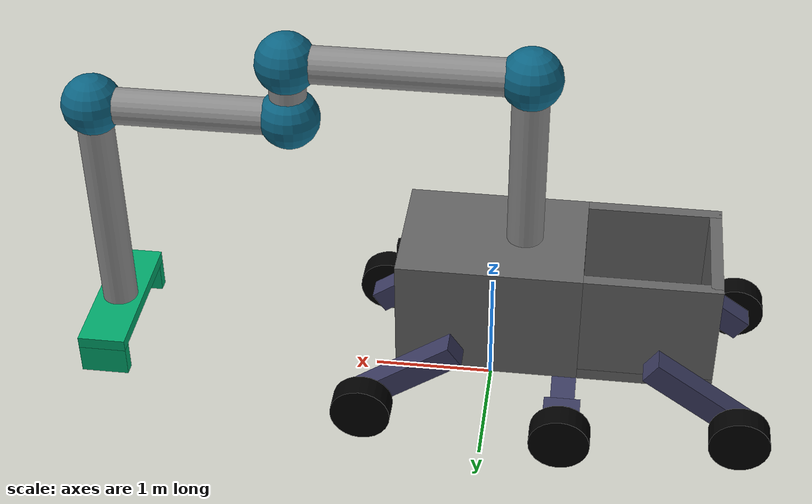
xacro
<?xml version="1.0"?>
<robot xmlns:xacro="http://www.ros.org/wiki/xacro" name="robot">

  <link name="base_footprint">
      <origin rpy="0 0.00000 0" xyz="0.00000 0.00000 0.00000"/>
  </link>

  <xacro:include filename="$(find rover_description)/urdf/wheels/rover_wheel.urdf.xacro"/>
  <xacro:include filename="$(find rover_description)/urdf/base/base.urdf.xacro"/>
  <xacro:include filename="$(find rover_description)/urdf/arm/arm.urdf.xacro"/>
  <xacro:include filename="$(find rover_description)/urdf/arm/gripper.urdf.xacro"/>
  <xacro:include filename="$(find rover_description)/urdf/sensors/imu.urdf.xacro"/>
  <xacro:include filename="$(find rover_description)/urdf/sensors/camera.urdf.xacro"/>

  <xacro:base parent="base_footprint"/>
  <xacro:arm parent="Base_link"/>
  <xacro:gripper parent="Brazo_L3_link"/>

  <!-- Wheels -->
  <xacro:wheel r="0.0000" p="1.57080" w="0.00000" x="0.15000" y="0.00000" z="0.00000" name="Rueda_cen_der_link" parent="Union_eje_cen_der_link"/>
  <xacro:wheel r="-3.1416" p="1.57080" w="0.00000" x="-0.15000" y="0.00000" z="0.00000" name="Rueda_cen_iz_link" parent="Union_eje_cen_iz_link"/>
  <xacro:wheel r="-1.57080" p="0.61087" w="-1.57080" x="0.20000" y="-0.00404" z="-0.43010" name="Rueda_del_der_link" parent="Eje_del_der_link"/>
  <xacro:wheel r="1.57080" p="0.61087" w="-1.57080" x="-0.20000" y="-0.00404" z="-0.43010" name="Rueda_del_iz_link" parent="Eje_del_iz_link"/>
  <xacro:wheel r="1.57080" p="0.61087" w="1.57080" x="0.20000" y="0.00404" z="-0.43010" name="Rueda_tras_der_link" parent="Eje_tras_der_link"/>
  <xacro:wheel r="-1.57080" p="0.61087" w="1.57080" x="-0.20000" y="0.00404" z="-0.43010" name="Rueda_tras_iz_link" parent="Eje_tra_iz_link"/>

  <!-- Sensors -->
  <xacro:IMU r="0" p="0" y="1.57080" parent="Base_link"/>
  <xacro:camera r="0" p="0" w="1.57080" x="0.00000" y="0.75000" z="0.30000" name="main_camera_link" parent="Base_link"/>
  <xacro:camera r="0" p="-1.57080" w="1.57080" x="0.00000" y="0.00000" z="0.050000" name="gripper_camera_link" parent="Base_pinza_link"/>

  <!-- Gazebo ROS Control plugins-->
  <xacro:include filename="$(find rover_description)/urdf/ros2_control.urdf.xacro"/>
  <xacro:arg name="config_controllers" default="$(find rover_description)/config/rover_controllers.yaml"/>
  <xacro:arg name="update_rate" default="20"/>
  <xacro:ros2_control/>
</robot>

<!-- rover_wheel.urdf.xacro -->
<robot name="robot" xmlns:xacro="http://wiki.ros.org/xacro">

  <xacro:macro name="wheel" params="r p w x y z name parent">
    <joint name="${name}_joint" type="continuous">
      <limit effort="100.00000" velocity="100.00000"/>
      <origin rpy="${r} ${p} ${w}" xyz="${x} ${y} ${z}"/>
      <parent link="${parent}"/>
      <child link="${name}"/>
      <axis xyz="0.00000 0.00000 1.00000"/>
    </joint>
    <link name="${name}">
      <collision name="${name}_collision">
        <origin rpy="0 0 0" xyz="0 0 0"/>
        <geometry>
          <cylinder radius="0.25" length="0.2"/>
        </geometry>
        <surface>
          <friction>
            <ode>
              <mu>1.000000</mu>
              <mu2>1.000000</mu2>
              <slip1>0.50000</slip1>
              <slip2>0.50000</slip2>
            </ode>
          </friction>
        </surface>
      </collision>
      <inertial>
        <origin rpy="0 0 0" xyz="0 0 0"/>
        <mass value="1.0"/>
        <inertia ixx="0.03125" ixy="0" ixz="0" iyy="0.01896" iyz="0" izz="0.01896"/>
      </inertial>
      <visual name="${name}_visual">
        <origin rpy="0 0 0" xyz="0 0 0"/>
        <material name="black"/>
        <geometry>
          <cylinder radius="0.25" length="0.2"/>
        </geometry>
      </visual>
    </link>

    <transmission name="${name}_transmission">
      <type>transmission_interface/SimpleTransmission</type>
      <joint name="${name}_joint">
        <hardwareInterface>hardware_interface/VelocityJointInterface</hardwareInterface>
      </joint>
      <actuator name="${name}_motor">
        <mechanicalReduction>1.0</mechanicalReduction>
      </actuator>
    </transmission>
    <gazebo reference="${name}">
      <mu1>5</mu1>
      <mu2>5</mu2>
    </gazebo>
  </xacro:macro>

  <material name="black">
    <color rgba="0.00000 0.00000 0.00000 1.00000"/>
  </material>

</robot>

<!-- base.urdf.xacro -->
<robot name="robot" xmlns:xacro="http://wiki.ros.org/xacro">

  <xacro:macro name="base" params="parent">
    <joint name="Eje_cen_der_link_joint" type="fixed">
        <origin rpy="0.00000 -0.95993 0.00000" xyz="0.50000 -0.65000 -0.60000"/>
        <parent link="Base_link"/>
        <child link="Eje_cen_der_link"/>
    </joint>
    <joint name="Eje_cen_iz_link_joint" type="fixed">
        <origin rpy="0.00000 0.95993 0.00000" xyz="-0.50000 -0.65000 -0.60000"/>
        <parent link="Base_link"/>
        <child link="Eje_cen_iz_link"/>
    </joint>
    <joint name="Eje_del_der_link_joint" type="fixed">
        <origin rpy="0.95993 0.00000 0.00000" xyz="0.65000 0.65000 -0.50000"/>
        <parent link="Base_link"/>
        <child link="Eje_del_der_link"/>
    </joint>
    <joint name="Eje_del_iz_link_joint" type="fixed">
        <origin rpy="0.95993 0.00000 0.00000" xyz="-0.65000 0.65000 -0.50000"/>
        <parent link="Base_link"/>
        <child link="Eje_del_iz_link"/>
    </joint>
    <joint name="Eje_tra_iz_link_joint" type="fixed">
        <origin rpy="-0.95993 0.00000 0.00000" xyz="-0.15000 -0.45000 -0.55000"/>
        <parent link="Pared_iz_link"/>
        <child link="Eje_tra_iz_link"/>
    </joint>
    <joint name="Eje_tras_der_link_joint" type="fixed">
        <origin rpy="-0.95993 0.00000 0.00000" xyz="0.15000 -0.45000 -0.55000"/>
        <parent link="Pared_der_link"/>
        <child link="Eje_tras_der_link"/>
    </joint>
    <joint name="Pared_der_link_joint" type="fixed">
        <origin rpy="0.00000 0.00000 0.00000" xyz="0.50000 -1.30000 0.05000"/>
        <parent link="Base_link"/>
        <child link="Pared_der_link"/>
    </joint>
    <joint name="Pared_inf_link_joint" type="fixed">
        <origin rpy="0.00000 0.00000 0.00000" xyz="0.00000 -1.30000 -0.45000"/>
        <parent link="Base_link"/>
        <child link="Pared_inf_link"/>
    </joint>
    <joint name="Pared_iz_link_joint" type="fixed">
        <origin rpy="0.00000 0.00000 0.00000" xyz="-0.50000 -1.30000 0.05000"/>
        <parent link="Base_link"/>
        <child link="Pared_iz_link"/>
    </joint>
    <joint name="Pared_tras_link_joint" type="fixed">
        <origin rpy="0.00000 0.00000 0.00000" xyz="0.00000 -0.50000 0.50000"/>
        <parent link="Pared_inf_link"/>
        <child link="Pared_tras_link"/>
    </joint>
    <joint name="Base_link_joint" type="fixed">
        <origin rpy="0.00000 0.00000 -1.5708" xyz="0.00000 0 1"/>
        <parent link="${parent}"/>
        <child link="Base_link"/>
    </joint>
    <joint name="Union_eje_cen_der_link_joint" type="fixed">
      <origin rpy="0.00000 0.95993 0.00000" xyz="0.07788 -0.00000 -0.37274"/>
      <parent link="Eje_cen_der_link"/>
      <child link="Union_eje_cen_der_link"/>
    </joint>
    <joint name="Union_eje_cen_iz_link_joint" type="fixed">
      <origin rpy="0.00000 -0.95993 0.00000" xyz="-0.07788 -0.00000 -0.37274"/>
      <parent link="Eje_cen_iz_link"/>
      <child link="Union_eje_cen_iz_link"/>
    </joint>
    <link name="Base_link">
      <collision name="Base_collision">
        <origin rpy="0.00000 0.00000 0.00000" xyz="0.00000 0.00000 0.00000"/>
        <geometry>
          <box size="1.10000 1.50000 1.00000"/>
        </geometry>
      </collision>
      <inertial>
        <inertia ixx="27.08333" ixy="0.00000" ixz="0.00000" iyy="18.41667" iyz="0.00000" izz="28.83333"/>
        <origin rpy="0.00000 0.00000 0.00000" xyz="0.00000 0.00000 0.00000"/>
        <mass value="100.00000"/>
      </inertial>
      <visual name="Base">
        <origin rpy="0.00000 0.00000 0.00000" xyz="0.00000 0.00000 0.00000"/>
        <material name="material"/>
        <geometry>
          <box size="1.10000 1.50000 1.00000"/>
        </geometry>
      </visual>
    </link>
    <link name="Eje_cen_der_link">
      <collision name="Eje_cen_der_collision">
        <origin rpy="0.00000 -0.00000 0.00000" xyz="-0.00000 -0.00000 -0.00000"/>
        <geometry>
          <box size="0.20000 0.20000 0.70000"/>
        </geometry>
      </collision>
      <inertial>
        <inertia ixx="0.01900" ixy="0.00000" ixz="0.01762" iyy="0.04417" iyz="0.00000" izz="0.03183"/>
        <origin rpy="0.00000 0.00000 0.00000" xyz="-0.00000 -0.00000 -0.00000"/>
        <mass value="1.00000"/>
      </inertial>
      <visual name="Eje_cen_der">
        <origin rpy="0.00000 0.00000 0.00000" xyz="0.00000 -0.00000 0.00000"/>
        <material name="dark_blue"/>
        <geometry>
          <box size="0.20000 0.20000 0.70000"/>
        </geometry>
      </visual>
    </link>
    <link name="Eje_cen_iz_link">
      <collision name="Eje_cen_iz_collision">
        <origin rpy="0.00000 0.00000 0.00000" xyz="0.00000 -0.00000 -0.00000"/>
        <geometry>
          <box size="0.20000 0.20000 0.70000"/>
        </geometry>
      </collision>
      <inertial>
        <inertia ixx="0.01900" ixy="0.00000" ixz="-0.01762" iyy="0.04417" iyz="0.00000" izz="0.03183"/>
        <origin rpy="0.00000 0.00000 0.00000" xyz="0.00000 -0.00000 -0.00000"/>
        <mass value="1.00000"/>
      </inertial>
      <visual name="Eje_cen_iz">
        <origin rpy="0.00000 0.00000 0.00000" xyz="0.00000 -0.00000 0.00000"/>
        <material name="dark_blue"/>
        <geometry>
          <box size="0.20000 0.20000 0.70000"/>
        </geometry>
      </visual>
    </link>
    <link name="Eje_del_der_link">
      <collision name="Eje_del_der_collision">
        <origin rpy="0.00000 0.00000 0.00000" xyz="0.00000 -0.00000 0.00000"/>
        <geometry>
          <box size="0.20000 0.20000 1.00000"/>
        </geometry>
      </collision>
      <inertial>
        <inertia ixx="0.08667" ixy="0.00000" ixz="0.00000" iyy="0.03299" iyz="0.03759" izz="0.06035"/>
        <origin rpy="0.00000 0.00000 0.00000" xyz="0.00000 -0.00000 0.00000"/>
        <mass value="1.00000"/>
      </inertial>
      <visual name="Eje_del_der">
        <origin rpy="0.00000 0.00000 0.00000" xyz="0.00000 -0.00000 0.00000"/>
        <material name="dark_blue"/>
        <geometry>
          <box size="0.20000 0.20000 1.00000"/>
        </geometry>
      </visual>
    </link>
    <link name="Eje_del_iz_link">
      <collision name="Eje_del_iz_collision">
        <origin rpy="0.00000 0.00000 0.00000" xyz="0.00000 -0.00000 0.00000"/>
        <geometry>
          <box size="0.20000 0.20000 1.00000"/>
        </geometry>
      </collision>
      <inertial>
        <inertia ixx="0.08667" ixy="0.00000" ixz="0.00000" iyy="0.03299" iyz="0.03759" izz="0.06035"/>
        <origin rpy="0.00000 0.00000 0.00000" xyz="0.00000 -0.00000 0.00000"/>
        <mass value="1.00000"/>
      </inertial>
      <visual name="Eje_del_iz">
        <origin rpy="0.00000 0.00000 0.00000" xyz="0.00000 -0.00000 0.00000"/>
        <material name="dark_blue"/>
        <geometry>
          <box size="0.20000 0.20000 1.00000"/>
        </geometry>
      </visual>
    </link>
    <link name="Eje_tra_iz_link">
      <collision name="Eje_tra_iz_collision">
        <origin rpy="-0.00000 0.00000 0.00000" xyz="0.00000 0.00000 -0.00000"/>
        <geometry>
          <box size="0.20000 0.20000 1.00000"/>
        </geometry>
      </collision>
      <inertial>
        <inertia ixx="0.08667" ixy="0.00000" ixz="0.00000" iyy="0.03299" iyz="-0.03759" izz="0.06035"/>
        <origin rpy="0.00000 0.00000 0.00000" xyz="0.00000 0.00000 -0.00000"/>
        <mass value="1.00000"/>
      </inertial>
      <visual name="Eje_tra_iz">
        <origin rpy="-0.00000 0.00000 0.00000" xyz="0.00000 0.00000 -0.00000"/>
        <material name="dark_blue"/>
        <geometry>
          <box size="0.20000 0.20000 1.00000"/>
        </geometry>
      </visual>
    </link>
    <link name="Eje_tras_der_link">
      <collision name="Eje_tras_der_collision">
        <origin rpy="-0.00000 0.00000 0.00000" xyz="0.00000 0.00000 -0.00000"/>
        <geometry>
          <box size="0.20000 0.20000 1.00000"/>
        </geometry>
      </collision>
      <inertial>
        <inertia ixx="0.08667" ixy="0.00000" ixz="0.00000" iyy="0.03299" iyz="-0.03759" izz="0.06035"/>
        <origin rpy="0.00000 0.00000 0.00000" xyz="0.00000 0.00000 -0.00000"/>
        <mass value="1.00000"/>
      </inertial>
      <visual name="Eje_tras_der">
        <origin rpy="-0.00000 0.00000 0.00000" xyz="0.00000 0.00000 -0.00000"/>
        <material name="dark_blue"/>
        <geometry>
          <box size="0.20000 0.20000 1.00000"/>
        </geometry>
      </visual>
    </link>
    <link name="Pared_der_link">
      <collision name="Pared_der_collision">
        <origin rpy="0.00000 0.00000 0.00000" xyz="0.00000 0.00000 0.00000"/>
        <geometry>
          <box size="0.10000 1.10000 0.90000"/>
        </geometry>
      </collision>
      <inertial>
        <inertia ixx="1.68333" ixy="0.00000" ixz="0.00000" iyy="0.68333" iyz="0.00000" izz="1.01667"/>
        <origin rpy="0.00000 0.00000 0.00000" xyz="0.00000 0.00000 0.00000"/>
        <mass value="10.00000"/>
      </inertial>
      <visual name="Pared_der">
        <origin rpy="0.00000 0.00000 0.00000" xyz="0.00000 0.00000 0.00000"/>
        <material name="material"/>
        <geometry>
          <box size="0.10000 1.10000 0.90000"/>
        </geometry>
      </visual>
    </link>
    <link name="Pared_inf_link">
      <collision name="Pared_inf_collision">
        <origin rpy="0.00000 0.00000 0.00000" xyz="0.00000 0.00000 0.00000"/>
        <geometry>
          <box size="1.10000 1.10000 0.10000"/>
        </geometry>
      </collision>
      <inertial>
        <inertia ixx="1.01667" ixy="0.00000" ixz="0.00000" iyy="1.01667" iyz="0.00000" izz="2.01667"/>
        <origin rpy="0.00000 0.00000 0.00000" xyz="0.00000 0.00000 0.00000"/>
        <mass value="10.00000"/>
      </inertial>
      <visual name="Pared_inf">
        <origin rpy="0.00000 0.00000 0.00000" xyz="0.00000 0.00000 0.00000"/>
        <material name="material"/>
        <geometry>
          <box size="1.10000 1.10000 0.10000"/>
        </geometry>
      </visual>
    </link>
    <link name="Pared_iz_link">
      <collision name="Pared_iz_collision">
        <origin rpy="0.00000 0.00000 0.00000" xyz="0.00000 0.00000 0.00000"/>
        <geometry>
          <box size="0.10000 1.10000 0.90000"/>
        </geometry>
      </collision>
      <visual name="Pared_iz">
        <origin rpy="0.00000 0.00000 0.00000" xyz="0.00000 0.00000 0.00000"/>
        <material name="material"/>
        <geometry>
          <box size="0.10000 1.10000 0.90000"/>
        </geometry>
      </visual>
    </link>
    <link name="Pared_tras_link">
      <collision name="Pared_tras_collision">
        <origin rpy="0.00000 0.00000 0.00000" xyz="0.00000 0.00000 0.00000"/>
        <geometry>
          <box size="1.00000 0.10000 0.90000"/>
        </geometry>
      </collision>
      <inertial>
        <inertia ixx="0.68333" ixy="0.00000" ixz="0.00000" iyy="1.50833" iyz="0.00000" izz="0.84167"/>
        <origin rpy="0.00000 0.00000 0.00000" xyz="0.00000 0.00000 0.00000"/>
        <mass value="10.00000"/>
      </inertial>
      <visual name="Pared_tras">
        <origin rpy="0.00000 0.00000 0.00000" xyz="0.00000 0.00000 0.00000"/>
        <material name="material"/>
        <geometry>
          <box size="1.00000 0.10000 0.90000"/>
        </geometry>
      </visual>
    </link>
    <link name="Union_eje_cen_der_link">
      <collision name="Union_eje_cen_der_collision">
        <origin rpy="0.00000 0.00000 0.00000" xyz="0.00000 0.00000 0.00000"/>
        <geometry>
          <box size="0.30000 0.30000 0.30000"/>
        </geometry>
      </collision>
      <inertial>
        <inertia ixx="0.01500" ixy="0.00000" ixz="0.00000" iyy="0.01500" iyz="0.00000" izz="0.01500"/>
        <origin rpy="0.00000 0.00000 0.00000" xyz="0.00000 0.00000 0.00000"/>
        <mass value="1.00000"/>
      </inertial>
      <visual name="Union_eje_cen_der">
        <origin rpy="0.00000 0.00000 0.00000" xyz="0.00000 0.00000 0.00000"/>
        <material name="dark_blue"/>
        <geometry>
          <box size="0.30000 0.30000 0.30000"/>
        </geometry>
      </visual>
    </link>
    <link name="Union_eje_cen_iz_link">
      <collision name="Union_eje_cen_iz_collision">
        <origin rpy="0.00000 0.00000 0.00000" xyz="0.00000 0.00000 0.00000"/>
        <geometry>
          <box size="0.30000 0.30000 0.30000"/>
        </geometry>
      </collision>
      <inertial>
        <inertia ixx="0.01500" ixy="0.00000" ixz="0.00000" iyy="0.01500" iyz="0.00000" izz="0.01500"/>
        <origin rpy="0.00000 0.00000 0.00000" xyz="0.00000 0.00000 0.00000"/>
        <mass value="1.00000"/>
      </inertial>
      <visual name="Union_eje_cen_iz">
        <origin rpy="0.00000 0.00000 0.00000" xyz="0.00000 0.00000 0.00000"/>
        <material name="dark_blue"/>
        <geometry>
          <box size="0.30000 0.30000 0.30000"/>
        </geometry>
      </visual>
    </link>

    <material name="material">
      <color rgba="0.39216 0.39216 0.39216 1.00000"/>
    </material>
    <material name="dark_blue">
      <color rgba="0.22745 0.23137 0.37647 1.00000"/>
    </material>
  </xacro:macro>

</robot>

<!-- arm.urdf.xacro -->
<robot name="robot" xmlns:xacro="http://wiki.ros.org/xacro">

  <xacro:macro name="arm" params="parent">
    <joint name="Brazo_L1_link_joint" type="fixed">
      <origin rpy="1.57080 0.00000 -1.57080" xyz="1.00000 0.00000 0.00000"/>
      <parent link="Union_base_L1_link"/>
      <child link="Brazo_L1_link"/>
    </joint>
    <joint name="Brazo_L2_link_joint" type="fixed">
      <origin rpy="1.57080 0.00000 -1.57080" xyz="0.85000 0.00000 0.00000"/>
      <parent link="Union_eje_L2_link"/>
      <child link="Brazo_L2_link"/>
    </joint>
    <joint name="Brazo_L3_link_joint" type="prismatic">
      <limit lower="0.00000" upper="1.70000" effort="50.0" velocity="1.5"/>
      <origin rpy="0.00000 0.00000 1.57080" xyz="0.00000 0.00000 -1.00000"/>
      <parent link="Union_L2_L3_link"/>
      <child link="Brazo_L3_link"/>
      <axis xyz="0.00000 0.00000 1.00000"/>
    </joint>
    <joint name="Brazo_base_link_joint" type="fixed">
      <origin rpy="0.00000 0.00000 0.00000" xyz="0.00000 -0.25000 1.00000"/>
      <parent link="${parent}"/>
      <child link="Brazo_base_link"/>
    </joint>
    <joint name="Union_L1_L2_link_joint" type="fixed">
      <origin rpy="0.00000 0.00000 0.00000" xyz="0.00000 0.00000 -0.25000"/>
      <parent link="Union_L1_eje_link"/>
      <child link="Union_L1_L2_link"/>
    </joint>
    <joint name="Union_L1_eje_link_joint" type="fixed">
      <origin rpy="-1.57080 0.00000 0.00000" xyz="0.00000 -0.00000 -0.90000"/>
      <parent link="Brazo_L1_link"/>
      <child link="Union_L1_eje_link"/>
    </joint>
    <joint name="Union_L2_L3_link_joint" type="fixed">
      <origin rpy="-1.57080 0.00000 0.00000" xyz="0.00000 -0.00000 -0.75000"/>
      <parent link="Brazo_L2_link"/>
      <child link="Union_L2_L3_link"/>
    </joint>
    <joint name="Union_base_L1_link_joint" type="revolute">
      <limit lower="-2.50000" upper="2.50000" effort="50.0" velocity="1.5"/>
      <origin rpy="0.00000 0.00000 1.57080" xyz="0.00000 0.00000 1.00000"/>
      <parent link="Brazo_base_link"/>
      <child link="Union_base_L1_link"/>
      <axis xyz="0.00000 0.00000 1.00000"/>
    </joint>
    <joint name="Union_eje_L2_link_joint" type="revolute">
      <limit lower="-2.50000" upper="2.50000" effort="50.0" velocity="1.5"/>
      <origin rpy="0.00000 0.00000 1.57080" xyz="0.00000 0.00000 -0.25000"/>
      <parent link="Union_L1_L2_link"/>
      <child link="Union_eje_L2_link"/>
      <axis xyz="0.00000 0.00000 1.00000"/>
    </joint>
    <link name="Brazo_L1_link">
      <collision name="Brazo_L1_collision">
        <origin rpy="-0.00000 0.00000 0.00000" xyz="0.00000 0.00000 0.00000"/>
        <geometry>
          <cylinder radius="0.15000" length="1.70000"/>
        </geometry>
      </collision>
      <inertial>
        <inertia ixx="0.49292" ixy="0.00000" ixz="0.00000" iyy="0.02250" iyz="-0.00000" izz="0.49292"/>
        <origin rpy="0.00000 0.00000 0.00000" xyz="0.00000 -0.00000 0.00000"/>
        <mass value="2.00000"/>
      </inertial>
      <visual name="Brazo_L1">
        <origin rpy="0.00000 0.00000 0.00000" xyz="0.00000 0.00000 0.00000"/>
        <material name="ligth_blue"/>
        <geometry>
          <cylinder radius="0.15000" length="1.70000"/>
        </geometry>
      </visual>
    </link>
    <link name="Brazo_L2_link">
      <collision name="Brazo_L2_collision">
        <origin rpy="0.00000 0.00000 0.00000" xyz="0.00000 0.00000 0.00000"/>
        <geometry>
          <cylinder radius="0.15000" length="1.50000"/>
        </geometry>
      </collision>
      <inertial>
        <inertia ixx="0.38625" ixy="0.00000" ixz="0.00000" iyy="0.02250" iyz="-0.00000" izz="0.38625"/>
        <origin rpy="0.00000 0.00000 0.00000" xyz="0.00000 0.00000 0.00000"/>
        <mass value="2.00000"/>
      </inertial>
      <visual name="Brazo_L2">
        <origin rpy="0.00000 0.00000 0.00000" xyz="0.00000 0.00000 0.00000"/>
        <material name="ligth_blue"/>
        <geometry>
          <cylinder radius="0.15000" length="1.50000"/>
        </geometry>
      </visual>
    </link>
    <link name="Brazo_L3_link">
      <collision name="Brazo_L3_collision">
        <origin rpy="0.00000 0.00000 0.00000" xyz="0.00000 0.00000 0.00000"/>
        <geometry>
          <cylinder radius="0.15000" length="2.00000"/>
        </geometry>
      </collision>
      <inertial>
        <inertia ixx="0.67792" ixy="0.00000" ixz="0.00000" iyy="0.67792" iyz="0.00000" izz="0.02250"/>
        <origin rpy="0.00000 0.00000 0.00000" xyz="0.00000 0.00000 0.00000"/>
        <mass value="2.00000"/>
      </inertial>
      <visual name="Brazo_L3">
        <origin rpy="0.00000 0.00000 0.00000" xyz="0.00000 0.00000 0.00000"/>
        <material name="ligth_blue"/>
        <geometry>
          <cylinder radius="0.15000" length="2.00000"/>
        </geometry>
      </visual>
    </link>
    <link name="Brazo_base_link">
      <collision name="Brazo_base_collision">
        <origin rpy="0.00000 0.00000 0.00000" xyz="0.00000 0.00000 0.00000"/>
        <geometry>
          <cylinder radius="0.15000" length="2.30000"/>
        </geometry>
      </collision>
      <inertial>
        <inertia ixx="4.46458" ixy="0.00000" ixz="0.00000" iyy="4.46458" iyz="0.00000" izz="0.11250"/>
        <origin rpy="0.00000 0.00000 0.00000" xyz="0.00000 0.00000 0.00000"/>
        <mass value="10.00000"/>
      </inertial>
      <visual name="Brazo_base">
        <origin rpy="0.00000 0.00000 0.00000" xyz="0.00000 0.00000 0.00000"/>
        <material name="ligth_blue"/>
        <geometry>
          <cylinder radius="0.15000" length="2.30000"/>
        </geometry>
      </visual>
    </link>
    <link name="Union_L1_L2_link">
      <collision name="Union_L1_L2_collision">
        <origin rpy="0.00000 0.00000 0.00000" xyz="0.00000 0.00000 0.00000"/>
        <geometry>
          <cylinder radius="0.15000" length="0.75000"/>
        </geometry>
      </collision>
      <inertial>
        <inertia ixx="0.05250" ixy="0.00000" ixz="0.00000" iyy="0.05250" iyz="0.00000" izz="0.01125"/>
        <origin rpy="0.00000 0.00000 0.00000" xyz="0.00000 0.00000 0.00000"/>
        <mass value="1.00000"/>
      </inertial>
      <visual name="Union_L1_L2">
        <origin rpy="0.00000 0.00000 0.00000" xyz="0.00000 0.00000 0.00000"/>
        <material name="ligth_blue"/>
        <geometry>
          <cylinder radius="0.15000" length="0.75000"/>
        </geometry>
      </visual>
    </link>
    <link name="Union_L1_eje_link">
      <collision name="Union_L1_eje_collision">
        <origin rpy="0.00000 0.00000 0.00000" xyz="0.00000 0.00000 0.00000"/>
        <geometry>
          <sphere radius="0.25000"/>
        </geometry>
      </collision>
      <inertial>
        <inertia ixx="0.02500" ixy="0.00000" ixz="0.00000" iyy="0.02500" iyz="0.00000" izz="0.02500"/>
        <origin rpy="0.00000 0.00000 0.00000" xyz="0.00000 0.00000 0.00000"/>
        <mass value="1.00000"/>
      </inertial>
      <visual name="Union_L1_eje">
        <origin rpy="0.00000 0.00000 0.00000" xyz="0.00000 0.00000 0.00000"/>
        <material name="ligth_grey"/>
        <geometry>
          <sphere radius="0.25000"/>
        </geometry>
      </visual>
    </link>
    <link name="Union_L2_L3_link">
      <collision name="Union_L2_L3_collision">
        <origin rpy="0.00000 0.00000 0.00000" xyz="0.00000 0.00000 0.00000"/>
        <geometry>
          <sphere radius="0.25000"/>
        </geometry>
      </collision>
      <inertial>
        <inertia ixx="0.02500" ixy="0.00000" ixz="0.00000" iyy="0.02500" iyz="0.00000" izz="0.02500"/>
        <origin rpy="0.00000 0.00000 0.00000" xyz="0.00000 0.00000 0.00000"/>
        <mass value="1.00000"/>
      </inertial>
      <visual name="Union_L2_L3">
        <origin rpy="0.00000 0.00000 0.00000" xyz="0.00000 0.00000 0.00000"/>
        <material name="ligth_grey"/>
        <geometry>
          <sphere radius="0.25000"/>
        </geometry>
      </visual>
    </link>
    <link name="Union_base_L1_link">
      <collision name="Union_base_L1_collision">
        <origin rpy="0.00000 0.00000 0.00000" xyz="0.00000 0.00000 0.00000"/>
        <geometry>
          <sphere radius="0.25000"/>
        </geometry>
      </collision>
      <inertial>
        <inertia ixx="0.02500" ixy="0.00000" ixz="0.00000" iyy="0.02500" iyz="0.00000" izz="0.02500"/>
        <origin rpy="0.00000 0.00000 0.00000" xyz="0.00000 0.00000 0.00000"/>
        <mass value="1.00000"/>
      </inertial>
      <visual name="Union_base_L1">
        <origin rpy="0.00000 0.00000 0.00000" xyz="0.00000 0.00000 0.00000"/>
        <material name="ligth_grey"/>
        <geometry>
          <sphere radius="0.25000"/>
        </geometry>
      </visual>
    </link>
    <link name="Union_eje_L2_link">
      <collision name="Union_eje_L2_collision">
        <origin rpy="0.00000 0.00000 0.00000" xyz="0.00000 0.00000 0.00000"/>
        <geometry>
          <sphere radius="0.25000"/>
        </geometry>
      </collision>
      <inertial>
        <inertia ixx="0.02500" ixy="0.00000" ixz="0.00000" iyy="0.02500" iyz="0.00000" izz="0.02500"/>
        <origin rpy="0.00000 0.00000 0.00000" xyz="0.00000 0.00000 0.00000"/>
        <mass value="1.00000"/>
      </inertial>
      <visual name="Union_eje_L2">
        <origin rpy="0.00000 0.00000 0.00000" xyz="0.00000 0.00000 0.00000"/>
        <material name="ligth_grey"/>
        <geometry>
          <sphere radius="0.25000"/>
        </geometry>
      </visual>
    </link>
  </xacro:macro>

  <material name="ligth_blue">
    <color rgba="0.55686 0.55686 0.55686 1.00000"/>
  </material>
  <material name="ligth_grey">
    <color rgba="0.04706 0.39608 0.51765 1.00000"/>
  </material>
</robot>

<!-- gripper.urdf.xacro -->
<robot name="robot" xmlns:xacro="http://wiki.ros.org/xacro">

  <xacro:macro name="gripper" params="parent">
    <joint name="Base_pinza_link_joint" type="continuous">
      <limit effort="50.0" velocity="1.5"/>
      <origin rpy="3.1416 0.00000 -1.57080" xyz="0.00000 0.00000 -1.00000"/>
      <parent link="${parent}"/>
      <child link="Base_pinza_link"/>
      <axis xyz="0.00000 0.00000 1.00000"/>
    </joint>
    <joint name="Dedo_der_link_joint" type="prismatic">
      <limit lower="0.00000" upper="0.45000" effort="50.0" velocity="1.5"/>
      <origin rpy="0.00000 0.00000 3.1416" xyz="0.57500 0.00000 0.17500"/>
      <parent link="Base_pinza_link"/>
      <child link="Dedo_der_link"/>
      <axis xyz="1.00000 0.00000 0.00000"/>
    </joint>
    <joint name="Dedo_iz_link_joint" type="prismatic">
      <limit lower="0.00000" upper="0.45000" effort="50.0" velocity="1.5"/>
      <origin rpy="0.00000 0.00000 0.00000" xyz="-0.57500 0.00000 0.17500"/>
      <parent link="Base_pinza_link"/>
      <child link="Dedo_iz_link"/>
      <axis xyz="1.00000 0.00000 0.00000"/>
    </joint>
    <link name="Base_pinza_link">
      <collision name="Base_pinza_collision">
        <origin rpy="0.00000 0.00000 0.00000" xyz="0.00000 0.00000 0.00000"/>
        <geometry>
          <box size="1.25000 0.40000 0.10000"/>
        </geometry>
      </collision>
      <inertial>
        <inertia ixx="0.01417" ixy="0.00000" ixz="0.00000" iyy="0.04771" iyz="0.00000" izz="0.06021"/>
        <origin rpy="0.00000 0.00000 0.00000" xyz="0.00000 0.00000 0.00000"/>
        <mass value="1.00000"/>
      </inertial>
      <visual name="Base_pinza">
        <origin rpy="0.00000 0.00000 0.00000" xyz="0.00000 0.00000 0.00000"/>
        <material name="ligth_green"/>
        <geometry>
          <box size="1.25000 0.40000 0.10000"/>
        </geometry>
      </visual>
    </link>
    <link name="Dedo_der_link">
      <collision name="Dedo_der_collision">
        <origin rpy="0.00000 0.00000 0.00000" xyz="0.00000 0.00000 -0.00000"/>
        <geometry>
          <box size="0.10000 0.40000 0.25000"/>
        </geometry>
      </collision>
      <inertial>
        <inertia ixx="0.00927" ixy="0.00000" ixz="0.00000" iyy="0.00302" iyz="0.00000" izz="0.00708"/>
        <origin rpy="0.00000 0.00000 0.00000" xyz="0.00000 0.00000 0.00000"/>
        <mass value="0.50000"/>
      </inertial>
      <visual name="Dedo_der">
        <origin rpy="0.00000 0.00000 0.00000" xyz="0.00000 0.00000 0.00000"/>
        <material name="ligth_green"/>
        <geometry>
          <box size="0.10000 0.40000 0.25000"/>
        </geometry>
      </visual>
    </link>
    <link name="Dedo_iz_link">
      <collision name="Dedo_iz_collision">
        <origin rpy="0.00000 0.00000 0.00000" xyz="0.00000 0.00000 0.00000"/>
        <geometry>
          <box size="0.10000 0.40000 0.25000"/>
        </geometry>
      </collision>
      <inertial>
        <inertia ixx="0.00927" ixy="0.00000" ixz="0.00000" iyy="0.00302" iyz="0.00000" izz="0.00708"/>
        <origin rpy="0.00000 0.00000 0.00000" xyz="0.00000 0.00000 0.00000"/>
        <mass value="0.50000"/>
      </inertial>
      <visual name="Dedo_iz">
        <origin rpy="0.00000 0.00000 0.00000" xyz="0.00000 0.00000 0.00000"/>
        <material name="ligth_green"/>
        <geometry>
          <box size="0.10000 0.40000 0.25000"/>
        </geometry>
      </visual>
    </link>
  </xacro:macro>

  <material name="ligth_green">
    <color rgba="0.00000 0.66275 0.42353 1.00000"/>
  </material>
</robot>

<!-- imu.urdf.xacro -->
<robot name="robot" xmlns:xacro="http://wiki.ros.org/xacro">

  <xacro:macro name="IMU" params="r p y parent">
    <joint name="IMU_joint" type="fixed">
      <origin rpy="${r} ${p} ${y}" xyz="0 0 0"/>
      <parent link="${parent}"/>
      <child link="IMU"/>
    </joint>

    <link name="IMU">
      <inertial>
        <mass value="0.001"/>
        <origin xyz="0 0 0" rpy="0 0 0"/>
        <inertia
          ixx="1e-6" ixy="0.0" ixz="0.0"
          iyy="1e-6" iyz="0.0"
          izz="1e-6"/>
      </inertial>
    </link>

    <gazebo reference="IMU">
      <sensor name="IMU_sensor" type="imu">
        <always_on>1</always_on>
        <update_rate>30</update_rate>
        <topic>imu/data</topic>
      </sensor>
    </gazebo>
  </xacro:macro>
</robot>

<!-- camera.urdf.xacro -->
<robot name="robot" xmlns:xacro="http://wiki.ros.org/xacro">

  <xacro:macro name="camera" params="r p w x y z name parent">
    <joint name="${name}_link_joint" type="fixed">
      <origin rpy="${r} ${p} ${w}" xyz="${x} ${y} ${z}"/>
      <parent link="${parent}"/>
      <child link="${name}_link"/>
    </joint>
    <joint name="${name}_frame_joint" type="fixed">
      <origin rpy="0 0 0.05" xyz="0 0 0"/>
      <parent link="${name}_link"/>
      <child link="${name}_frame"/>
    </joint>
    <joint name="${name}_optical_frame_joint" type="fixed">
      <origin rpy="0 1.57080 0" xyz="0 0 0"/>
      <parent link="${name}_frame"/>
      <child link="${name}_optical_frame"/>
    </joint>

    <link name="${name}_link">
        <visual name="${name}_link_visual">
            <origin rpy="0 0 0" xyz="0 0 0"/>
            <material name="camera_black"/>
            <geometry>
                <box size="0.1 0.1 0.1"/>
            </geometry>
        </visual>
    </link>
    <link name="${name}_frame"></link>
    <link name="${name}_optical_frame"/>
    <gazebo reference="${name}_frame">
      <sensor name="${name}_sensor" type="camera">
        <visualize>true</visualize>
        <update_rate>30</update_rate>
        <topic>/${name}/image</topic>
        <camera>
          <horizontal_fov>${radians(float(80))}</horizontal_fov>
          <image>
            <width>1280</width>
            <height>720</height>
            <format>R8G8B8</format>
          </image>
          <clip>
            <near>0.10</near>
            <far>15.0</far>
          </clip>
          <noise>
            <type>gaussian</type>
            <mean>0.0</mean>
            <stddev>0.007</stddev>
          </noise>
          <optical_frame_id>${name}_frame</optical_frame_id>
        </camera>
      </sensor>
    </gazebo>
  </xacro:macro>

  <material name="camera_black">
    <color rgba="0.00000 0.00000 0.00000 1.00000"/>
  </material>
</robot>
